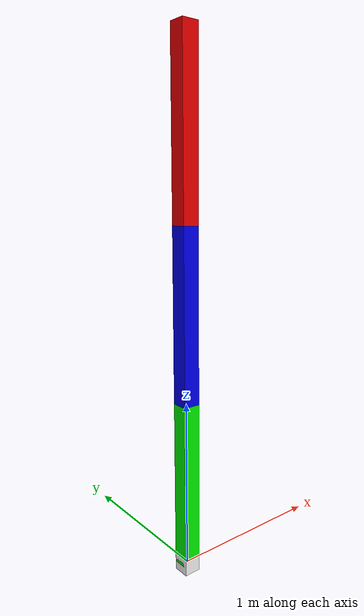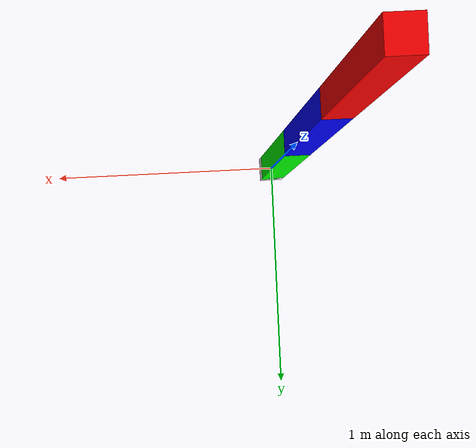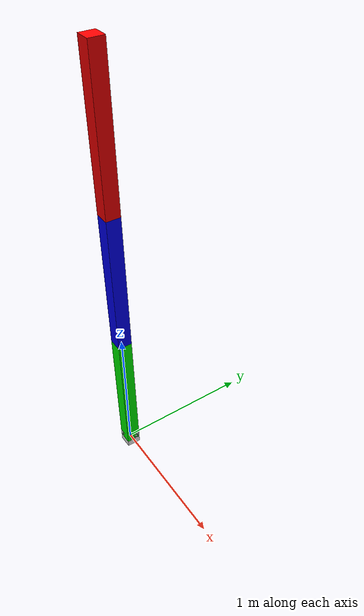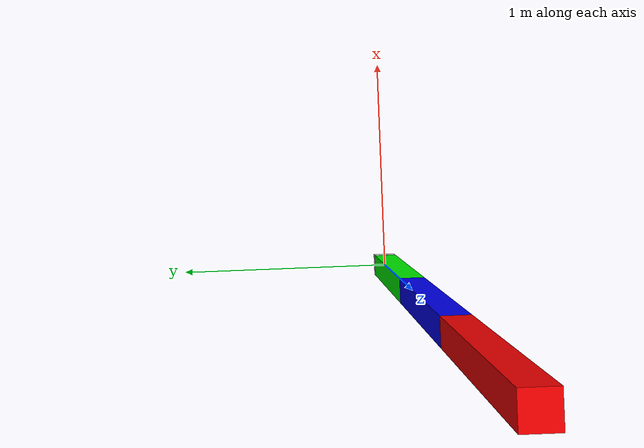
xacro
<?xml version="1.0"?>
<robot xmlns:xacro="http://www.ros.org/wiki/xacro" name="simple_arm">

  <ros2_control name="simple_arm_ros2_control" type="system">
    <hardware>
      <plugin>ign_ros2_control/IgnitionSystem</plugin>
    </hardware>
    <joint name="joint1">
      <command_interface name="position">
        <param name="min">-1</param>
        <param name="max">1</param>
      </command_interface>
      <state_interface name="position"/>
      <state_interface name="velocity"/>
      <state_interface name="effort"/>
    </joint>
    <joint name="joint2">
      <command_interface name="position">
        <param name="min">-1</param>
        <param name="max">1</param>
      </command_interface>
      <state_interface name="position"/>
      <state_interface name="velocity"/>
      <state_interface name="effort"/>
    </joint>
    <joint name="joint3">
      <command_interface name="position">
        <param name="min">-1</param>
        <param name="max">1</param>
      </command_interface>
      <state_interface name="position"/>
      <state_interface name="velocity"/>
      <state_interface name="effort"/>
    </joint>
  </ros2_control>

  <gazebo>
    <plugin filename="libign_ros2_control-system.so" name="ign_ros2_control::IgnitionROS2ControlPlugin">
      <parameters>$(find simple_arm)/config/simple_arm_controllers.yaml </parameters>
    </plugin>
  </gazebo>

  <xacro:property name="mass" value="1"/>
  <xacro:property name="width" value="0.1"/>
  <xacro:property name="height" value="1"/>

  <link name="world"/>

  <joint name="fixed_base" type="fixed">
    <parent link="world"/>
    <child link="base_link"/>
    <origin xyz="0 0 0" rpy="0 0 0"/>
  </joint>

  <link name="base_link"/>

  <joint name="joint0" type="fixed">
    <parent link="base_link"/>
    <child link="link0"/>
    <origin xyz="0 0 0" rpy="0 0 0"/>
  </joint>

  <link name="link0">
    <visual>
      <geometry>
        <box size="${width} ${width} ${width}"/>
      </geometry>
      <material name="white">
        <color rgba="1 1 1 1"/>
      </material>
    </visual>
    <inertial>
      <origin xyz="0 0 ${width/2}" rpy="0 0 0"/>
      <mass value="${mass}"/>
      <inertia
        ixx="${mass/12.0 * (width*width + width*width)}" ixy="0.0" ixz="0.0"
        iyy="${mass/12.0 * (width*width + width*width)}" iyz="0.0"
        izz="${mass/12.0 * (width*width + width*width)}"/>
    </inertial>
  </link>

  <joint name="joint1" type="revolute">
    <parent link="link0"/>
    <child link="link1"/>
    <origin xyz="0 0 0" rpy="0 0 0"/>
    <axis xyz="0 1 0"/>
    <dynamics damping="0.7"/>
    <limit effort="100" velocity="1.0" upper="1.6" lower="-1.6"/>
  </joint>

  <link name="link1">
    <visual>
      <origin xyz="0 0 ${height/2}" rpy="0 0 0"/>
      <geometry>
        <box size="${width} ${width} ${height}"/>
      </geometry>
      <material name="green">
        <color rgba="0 1 0 1"/>
      </material>
    </visual>
    <inertial>
      <origin xyz="0 0 ${height/2}" rpy="0 0 0"/>
      <mass value="${mass}"/>
      <inertia
        ixx="${mass/12.0 * (width*width + height*height)}" ixy="0.0" ixz="0.0"
        iyy="${mass/12.0 * (height*height + width*width)}" iyz="0.0"
        izz="${mass/12.0 * (width*width + width*width)}"/>
    </inertial>
  </link>

  <joint name="joint2" type="revolute">
    <parent link="link1"/>
    <child link="link2"/>
    <origin xyz="0 0 ${height}" rpy="0 0 0"/>
    <axis xyz="0 1 0"/>
    <dynamics damping="0.7"/>
    <limit effort="100" velocity="1.0" upper="1.6" lower="-1.6"/>
  </joint>

  <link name="link2">
    <visual>
      <origin xyz="0 0 ${height/2}" rpy="0 0 0"/>
      <geometry>
        <box size="${width} ${width} ${height}"/>
      </geometry>
      <material name="blue">
        <color rgba="0 0 1 1"/>
      </material>
    </visual>
    <inertial>
      <origin xyz="0 0 ${height/2}" rpy="0 0 0"/>
      <mass value="${mass}"/>
      <inertia
        ixx="${mass/12.0 * (width*width + height*height)}" ixy="0.0" ixz="0.0"
        iyy="${mass/12.0 * (height*height + width*width)}" iyz="0.0"
        izz="${mass/12.0 * (width*width + width*width)}"/>
    </inertial>
  </link>

  <joint name="joint3" type="revolute">
    <parent link="link2"/>
    <child link="link3"/>
    <origin xyz="0 0 ${height}" rpy="0 0 0"/>
    <axis xyz="0 1 0"/>
    <dynamics damping="0.7"/>
    <limit effort="100" velocity="1.0" upper="1.6" lower="-1.6"/>
  </joint>

  <link name="link3">
    <visual>
      <origin xyz="0 0 ${height/2}" rpy="0 0 0"/>
      <geometry>
        <box size="${width} ${width} ${height}"/>
      </geometry>
      <material name="red">
        <color rgba="1 0 0 1"/>
      </material>
    </visual>
    <inertial>
      <origin xyz="0 0 ${height/2}" rpy="0 0 0"/>
      <mass value="${mass}"/>
      <inertia
        ixx="${mass/12.0 * (width*width + height*height)}" ixy="0.0" ixz="0.0"
        iyy="${mass/12.0 * (height*height + width*width)}" iyz="0.0"
        izz="${mass/12.0 * (width*width + width*width)}"/>
    </inertial>
  </link>

  <joint name="tool_joint" type="fixed">
    <origin xyz="0 0 1" rpy="0 0 0"/>
    <parent link="link3"/>
    <child link="tool_link"/>
  </joint>

  <link name="tool_link">
  </link>

</robot>
